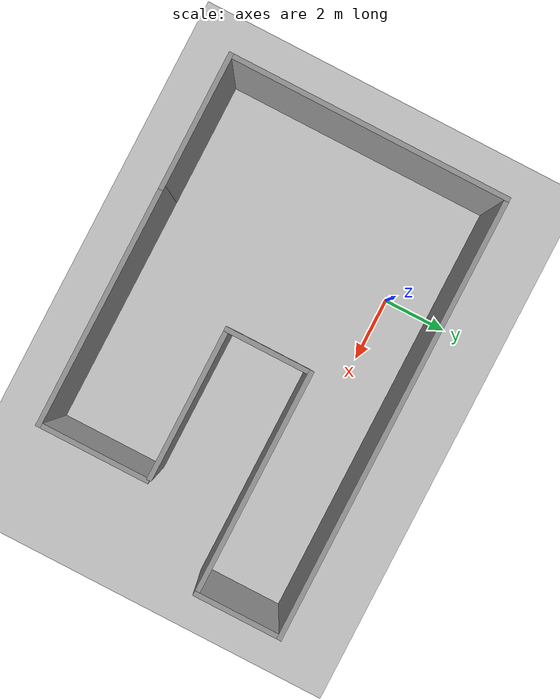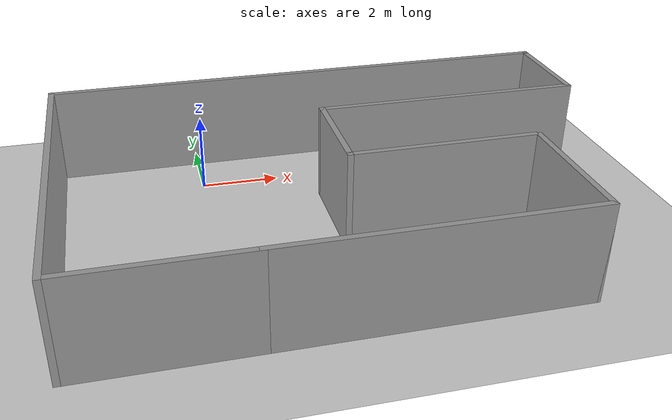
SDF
<sdf version="1.7">
 <world name="default">
  <light name="sun" type="directional">
   <pose>0 0 10 0 -0 0</pose>
   <diffuse>0.8 0.8 0.8 1</diffuse>
   <specular>0.2 0.2 0.2 1</specular>
   <attenuation>
    <range>1000</range>
    <constant>0.9</constant>
    <linear>0.01</linear>
    <quadratic>0.001</quadratic>
   </attenuation>
   <direction>-0.5 0.1 -0.9</direction>
   <spot><inner_angle>0</inner_angle><outer_angle>0</outer_angle><falloff>0</falloff></spot>
  </light>
  <model name="ground_plane">
   <static>1</static>
   <link name="link">
    <collision name="collision">
     <geometry><plane><normal>0 0 1</normal><size>100 100</size></plane></geometry>
     <surface>
      <contact><collide_bitmask>65535</collide_bitmask></contact>
      <friction><ode><mu>100</mu><mu2>50</mu2></ode></friction>
     </surface>
    </collision>
    <visual name="visual">
     <cast_shadows>0</cast_shadows>
     <geometry><plane><normal>0 0 1</normal><size>100 100</size></plane></geometry>
     <material>
      <script><uri>file://media/materials/scripts/gazebo.material</uri><name>Gazebo/Grey</name></script>
     </material>
    </visual>
   </link>
  </model>
  <gravity>0 0 -9.8</gravity>
  <magnetic_field>6e-06 2.3e-05 -4.2e-05</magnetic_field>
  <atmosphere type="adiabatic"/>
  <physics type="ode">
   <max_step_size>0.001</max_step_size>
   <real_time_factor>1</real_time_factor>
   <real_time_update_rate>1000</real_time_update_rate>
  </physics>
  <scene><ambient>0.4 0.4 0.4 1</ambient><background>0.7 0.7 0.7 1</background><shadows>1</shadows></scene>
  <audio><device>default</device></audio>
  <spherical_coordinates>
   <surface_model>EARTH_WGS84</surface_model>
   <latitude_deg>0</latitude_deg>
   <longitude_deg>0</longitude_deg>
   <elevation>0</elevation>
   <heading_deg>0</heading_deg>
  </spherical_coordinates>
  <model name="Map2">
   <pose>3.06808 -2.86431 0 0 -0 0</pose>
   <link name="Wall_27">
    <collision name="Wall_27_Collision">
     <geometry><box><size>4.25 0.15 2.5</size></box></geometry>
     <pose>0 0 1.25 0 -0 0</pose>
    </collision>
    <visual name="Wall_27_Visual">
     <pose>0 0 1.25 0 -0 0</pose>
     <geometry><box><size>4.25 0.15 2.5</size></box></geometry>
     <material>
      <script><uri>file://media/materials/scripts/gazebo.material</uri><name>Gazebo/Grey</name></script>
      <ambient>1 1 1 1</ambient>
     </material>
     <meta><layer>0</layer></meta>
    </visual>
    <pose>-4.75 -4.3 0 0 -0 3.14159</pose>
   </link>
   <link name="Wall_28">
    <collision name="Wall_28_Collision">
     <geometry><box><size>8.75 0.15 2.5</size></box></geometry>
     <pose>0 0 1.25 0 -0 0</pose>
    </collision>
    <visual name="Wall_28_Visual">
     <pose>0 0 1.25 0 -0 0</pose>
     <geometry><box><size>8.75 0.15 2.5</size></box></geometry>
     <material>
      <script><uri>file://media/materials/scripts/gazebo.material</uri><name>Gazebo/Grey</name></script>
      <ambient>1 1 1 1</ambient>
     </material>
     <meta><layer>0</layer></meta>
    </visual>
    <pose>-6.8 0 0 0 -0 1.5708</pose>
   </link>
   <link name="Wall_29">
    <collision name="Wall_29_Collision">
     <geometry><box><size>13.75 0.15 2.5</size></box></geometry>
     <pose>0 0 1.25 0 -0 0</pose>
    </collision>
    <visual name="Wall_29_Visual">
     <pose>0 0 1.25 0 -0 0</pose>
     <geometry><box><size>13.75 0.15 2.5</size></box></geometry>
     <material>
      <script><uri>file://media/materials/scripts/gazebo.material</uri><name>Gazebo/Grey</name></script>
      <ambient>1 1 1 1</ambient>
     </material>
     <meta><layer>0</layer></meta>
    </visual>
    <pose>0 4.3 0 0 -0 0</pose>
   </link>
   <link name="Wall_30">
    <collision name="Wall_30_Collision">
     <geometry><box><size>2.75 0.15 2.5</size></box></geometry>
     <pose>0 0 1.25 0 -0 0</pose>
    </collision>
    <visual name="Wall_30_Visual">
     <pose>0 0 1.25 0 -0 0</pose>
     <geometry><box><size>2.75 0.15 2.5</size></box></geometry>
     <material>
      <script><uri>file://media/materials/scripts/gazebo.material</uri><name>Gazebo/Grey</name></script>
      <ambient>1 1 1 1</ambient>
     </material>
     <meta><layer>0</layer></meta>
    </visual>
    <pose>6.8 3 0 0 -0 -1.5708</pose>
   </link>
   <link name="Wall_31">
    <collision name="Wall_31_Collision">
     <geometry><box><size>7 0.15 2.5</size></box></geometry>
     <pose>0 0 1.25 0 -0 0</pose>
    </collision>
    <visual name="Wall_31_Visual">
     <pose>0 0 1.25 0 -0 0</pose>
     <geometry><box><size>7 0.15 2.5</size></box></geometry>
     <material>
      <script><uri>file://media/materials/scripts/gazebo.material</uri><name>Gazebo/Grey</name></script>
      <ambient>1 1 1 1</ambient>
     </material>
     <meta><layer>0</layer></meta>
    </visual>
    <pose>3.375 1.7 0 0 -0 3.14159</pose>
   </link>
   <link name="Wall_32">
    <collision name="Wall_32_Collision">
     <geometry><box><size>2.75 0.15 2.5</size></box></geometry>
     <pose>0 0 1.25 0 -0 0</pose>
    </collision>
    <visual name="Wall_32_Visual">
     <pose>0 0 1.25 0 -0 0</pose>
     <geometry><box><size>2.75 0.15 2.5</size></box></geometry>
     <material>
      <script><uri>file://media/materials/scripts/gazebo.material</uri><name>Gazebo/Grey</name></script>
      <ambient>1 1 1 1</ambient>
     </material>
     <meta><layer>0</layer></meta>
    </visual>
    <pose>-0.05 0.4 0 0 -0 -1.5708</pose>
   </link>
   <link name="Wall_33">
    <collision name="Wall_33_Collision">
     <geometry><box><size>4.75 0.15 2.5</size></box></geometry>
     <pose>0 0 1.25 0 -0 0</pose>
    </collision>
    <visual name="Wall_33_Visual">
     <pose>0 0 1.25 0 -0 0</pose>
     <geometry><box><size>4.75 0.15 2.5</size></box></geometry>
     <material>
      <script><uri>file://media/materials/scripts/gazebo.material</uri><name>Gazebo/Grey</name></script>
      <ambient>1 1 1 1</ambient>
     </material>
     <meta><layer>0</layer></meta>
    </visual>
    <pose>2.25 -0.9 0 0 -0 0</pose>
   </link>
   <link name="Wall_36">
    <collision name="Wall_36_Collision">
     <geometry><box><size>7.5 0.15 2.5</size></box></geometry>
     <pose>0 0 1.25 0 -0 0</pose>
    </collision>
    <visual name="Wall_36_Visual">
     <pose>0 0 1.25 0 -0 0</pose>
     <geometry><box><size>7.5 0.15 2.5</size></box></geometry>
     <material>
      <script><uri>file://media/materials/scripts/gazebo.material</uri><name>Gazebo/Grey</name></script>
      <ambient>1 1 1 1</ambient>
     </material>
     <meta><layer>0</layer></meta>
    </visual>
    <pose>0.975 -4.3 0 0 -0 0</pose>
   </link>
   <link name="Wall_37">
    <collision name="Wall_37_Collision">
     <geometry><box><size>3.5 0.15 2.5</size></box></geometry>
     <pose>0 0 1.25 0 -0 0</pose>
    </collision>
    <visual name="Wall_37_Visual">
     <pose>0 0 1.25 0 -0 0</pose>
     <geometry><box><size>3.5 0.15 2.5</size></box></geometry>
     <material>
      <script><uri>file://media/materials/scripts/gazebo.material</uri><name>Gazebo/Grey</name></script>
      <ambient>1 1 1 1</ambient>
     </material>
     <meta><layer>0</layer></meta>
    </visual>
    <pose>4.65 -2.625 0 0 -0 1.5708</pose>
   </link>
   <static>1</static>
  </model>
 </world>
</sdf>
